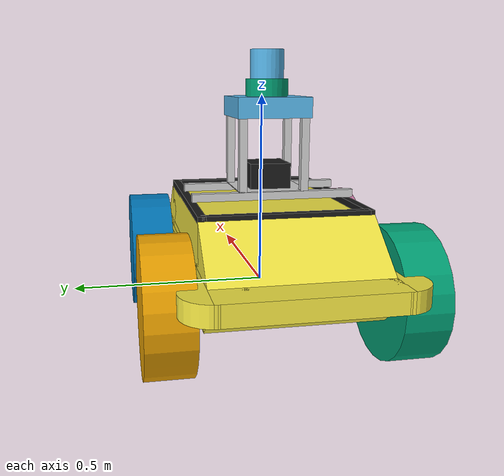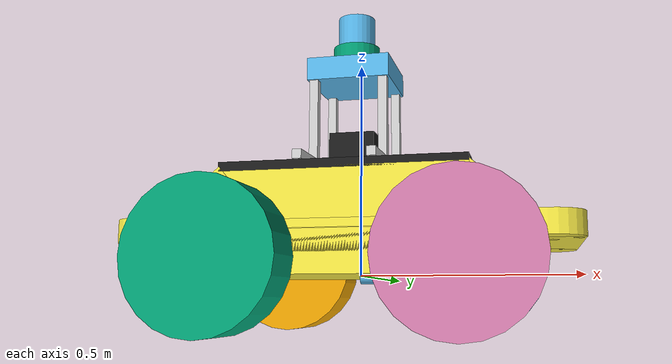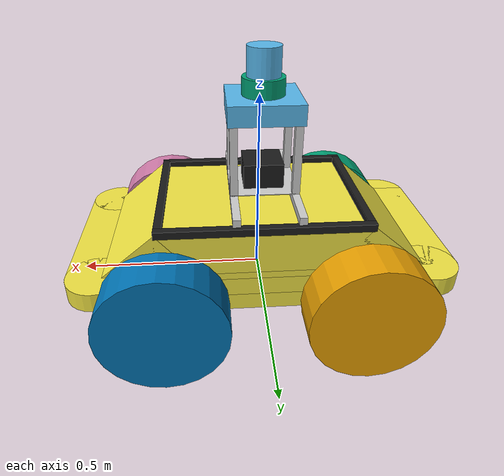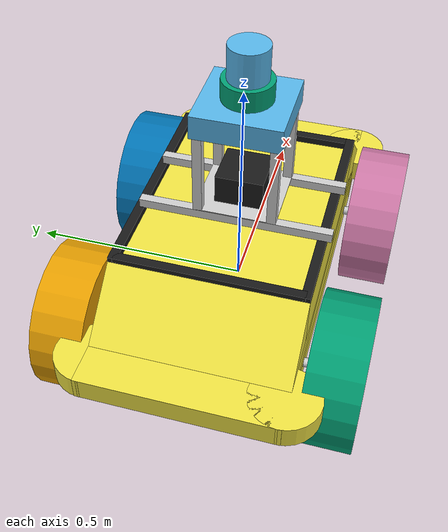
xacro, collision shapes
<?xml version="1.0" ?>
<robot name="ctu_cras_norlab_husky_sensor_config_3" xmlns:xacro="http://www.ros.org/wiki/xacro">
    <xacro:arg name="name" default="" />
    <xacro:if value="${len('$(arg name)') == 0}">
        <xacro:arg name="prefix" default="" />
    </xacro:if>
    <xacro:unless value="${len('$(arg name)') == 0}">
        <xacro:arg name="prefix" default="$(arg name)/" />
    </xacro:unless>

    <xacro:arg name="camera_0_pos_x" default="0.01"/>
    <xacro:arg name="camera_0_pos_y" default="0.048"/>
    <xacro:arg name="camera_0_pos_z" default="0.002"/>
    <xacro:arg name="camera_0_rpy_r" default="0"/>
    <xacro:arg name="camera_0_rpy_p" default="0"/>
    <xacro:arg name="camera_0_rpy_y" default="0"/>

    <xacro:arg name="camera_1_pos_x" default="0.048"/>
    <xacro:arg name="camera_1_pos_y" default="-0.01"/>
    <xacro:arg name="camera_1_pos_z" default="0.002"/>
    <xacro:arg name="camera_1_rpy_r" default="0"/>
    <xacro:arg name="camera_1_rpy_p" default="0"/>
    <xacro:arg name="camera_1_rpy_y" default="-1.5707963267948966"/>

    <xacro:arg name="camera_2_pos_x" default="-0.01"/>
    <xacro:arg name="camera_2_pos_y" default="-0.048"/>
    <xacro:arg name="camera_2_pos_z" default="0.002"/>
    <xacro:arg name="camera_2_rpy_r" default="0"/>
    <xacro:arg name="camera_2_rpy_p" default="0"/>
    <xacro:arg name="camera_2_rpy_y" default="3.14159265359"/>

    <xacro:arg name="camera_3_pos_x" default="-0.048"/>
    <xacro:arg name="camera_3_pos_y" default="0.01"/>
    <xacro:arg name="camera_3_pos_z" default="0.002"/>
    <xacro:arg name="camera_3_rpy_r" default="0"/>
    <xacro:arg name="camera_3_rpy_p" default="0"/>
    <xacro:arg name="camera_3_rpy_y" default="1.5707963267948966"/>

    <xacro:arg name="ouster_pos_x" default="0.000000"/>
    <xacro:arg name="ouster_pos_y" default="0.000000"/>
    <xacro:arg name="ouster_pos_z" default="0.000000"/>
    <xacro:arg name="ouster_rpy_r" default="0.000000"/>
    <xacro:arg name="ouster_rpy_p" default="0.000000"/>
    <xacro:arg name="ouster_rpy_y" default="0.785398163"/>

    <xacro:arg name="imu_pos_x" default="0.000000"/>
    <xacro:arg name="imu_pos_y" default="0.000000"/>
    <xacro:arg name="imu_pos_z" default="0.000000"/>
    <xacro:arg name="imu_rpy_r" default="3.14159265359"/>
    <xacro:arg name="imu_rpy_p" default="0.000000"/>
    <xacro:arg name="imu_rpy_y" default="0.000000"/>

    <!-- ARGUMENTS FOR DETERMINING REMOVABLE ROBOT PARTS PRESENCE AND POSITION ON THE BODY. -->

    <xacro:arg name="has_tower" default="1" />
    <!-- Distance from rear_right_corner to the rear part of the rear right ITEM of the top box. -->
    <xacro:arg name="tower_j_x" default="0.17" />
    <!-- Distance from rear_right_corner to the rightmost part of the rightmost ITEM of the top box. -->
    <xacro:arg name="tower_j_y" default="0.11" />
    <!-- Length of the top box along the X dimension -->
    <xacro:arg name="tower_x_dim" default="0.18" />
    <!-- Length of the top box along the X dimension -->
    <xacro:arg name="tower_y_dim" default="0.18" />
    <xacro:arg name="tower_height" default="0.23" />
    <xacro:arg name="tower_item_height" default="0.2" />
    <xacro:arg name="tower_lower_floor_z" default="0.002" />
    <xacro:arg name="tower_cap_revision" default="v1" />

    <xacro:arg name="has_xsens_mti_30_imu" default="1" />
    <xacro:arg name="has_ouster_lidar" default="1" />
    <xacro:arg name="has_basler_cameras" default="1" />
    <xacro:arg name="has_mote_deployer" default="0" />
    <xacro:arg name="has_mobilicom" default="0" />
    <xacro:arg name="has_bullet" default="1" />
    <xacro:arg name="has_jetson" default="1" />

    <xacro:arg name="ouster_mount_revision" default="v1" />

    <xacro:arg name="rendering_target" default="urdf" /> <!-- Pass either "urdf" or "ign" to tell the parser what is the desired target format. -->

    <xacro:arg name="simulate_ouster_lidar" default="True" />
    <xacro:arg name="simulate_basler_cams" default="True" />
    <xacro:arg name="simulate_imu" default="True" />

    <xacro:arg name="visualize_sensors" default="False" />

    <!-- MEASURED CONSTANTS -->
    <xacro:property name="body_mass" value="41.064" />
    <xacro:property name="wheel_mass" value="2.637" />
    <xacro:property name="tower_mass" value="2.0" />

    <!-- MACRO SPECIFICATIONS -->

    <xacro:include filename="$(find ctu_cras_norlab_husky_sensor_config_3)/urdf/utils.xacro" />

    <!-- SPECIAL LINKS -->

    <!-- This is a virtual link that specifies the origin to which parts attachable to the top of the robot should be related. -->
    <xacro:empty_link name="$(arg prefix)rear_right_corner" />
    <xacro:fixed_joint name="rear_right_corner_j" parent="$(arg prefix)base_link" child="$(arg prefix)rear_right_corner"
                       xyz="-0.27 -0.21 0.24"/>

    <!-- PAYLOAD -->
    <xacro:if value="$(arg has_bullet)">
        <xacro:include filename="$(find ctu_cras_norlab_husky_sensor_config_3)/urdf/bullet.xacro" />
    </xacro:if>
    <xacro:if value="$(arg has_mobilicom)">
        <xacro:include filename="$(find ctu_cras_norlab_husky_sensor_config_3)/urdf/mobilicom.xacro" />
    </xacro:if>
    <xacro:if value="$(arg has_ouster_lidar)">
        <xacro:include filename="$(find ctu_cras_norlab_husky_sensor_config_3)/urdf/ouster_lidar.xacro" />
    </xacro:if>
    <xacro:if value="$(arg has_mote_deployer)">
        <xacro:include filename="$(find ctu_cras_norlab_husky_sensor_config_3)/urdf/mote_deployer.xacro" />
    </xacro:if>
    <xacro:if value="$(arg has_basler_cameras)">
        <xacro:include filename="$(find ctu_cras_norlab_husky_sensor_config_3)/urdf/basler_cameras.xacro" />
    </xacro:if>
    <xacro:if value="$(arg has_xsens_mti_30_imu)">
        <xacro:include filename="$(find ctu_cras_norlab_husky_sensor_config_3)/urdf/xsens_mti_30.xacro" />
    </xacro:if>

    <!-- ROBOT LINKS AND JOINTS SPECIFICATION -->

    <link name='$(arg prefix)base_link'>
        <collision name='base_link_collision_bumper'>
            <origin xyz='0 0 0.091' rpy='0 -0 0'/>
            <geometry>
                <box size='0.9874 0.42 0.05'/>
            </geometry>
        </collision>
        <collision name='base_link_collision_middle'>
            <origin xyz='0 0 0.07' rpy='0 -0 0'/>
            <geometry>
                <box size='0.82 0.42 0.05'/>
            </geometry>
        </collision>
        <collision name='base_link_collision_bottom'>
            <origin xyz='0 0 0.046' rpy='0 -0 0'/>
            <geometry>
                <box size='0.7 0.42 0.095'/>
            </geometry>
        </collision>
        <collision name='base_link_collision_top'>
            <origin xyz='0 0 0.169' rpy='0 -0 0'/>
            <geometry>
                <box size='0.54 0.42 0.11'/>
            </geometry>
        </collision>
        <collision name='base_link_collision_front_bottom'>
            <origin xyz='0.3683 0 0.0367' rpy='0 -0.66 0'/>
            <geometry>
                <box size='0.0759 0.42 0.038'/>
            </geometry>
        </collision>
        <collision name='base_link_collision_rear_bottom'>
            <origin xyz='-0.3683 0 0.0367' rpy='0 0.66 0'/>
            <geometry>
                <box size='0.0759 0.42 0.038'/>
            </geometry>
        </collision>
        <collision name='base_link_collision_front_top'>
            <origin xyz='0.305 0 0.134' rpy='0 0.7 0'/>
            <geometry>
                <box size='0.18 0.42 0.1'/>
            </geometry>
        </collision>
        <collision name='base_link_collision_rear_top'>
            <origin xyz='-0.305 0 0.134' rpy='0 -0.7 0'/>
            <geometry>
                <box size='0.18 0.42 0.1'/>
            </geometry>
        </collision>
        <collision name='base_link_collision_front_bumper_left_side'>
            <origin xyz='0.419 0.2 0.091' />
            <geometry>
                <cylinder length="0.05" radius="0.075"/>
            </geometry>
        </collision>
        <collision name='base_link_collision_front_bumper_right_side'>
            <origin xyz='0.419 -0.2 0.091' />
            <geometry>
                <cylinder length="0.05" radius="0.075"/>
            </geometry>
        </collision>
        <collision name='base_link_collision_rear_bumper_left_side'>
            <origin xyz='-0.419 0.2 0.091' />
            <geometry>
                <cylinder length="0.05" radius="0.075"/>
            </geometry>
        </collision>
        <collision name='base_link_collision_rear_bumper_right_side'>
            <origin xyz='-0.419 -0.2 0.091' />
            <geometry>
                <cylinder length="0.05" radius="0.075"/>
            </geometry>
        </collision>
        <visual name='base_link_visual'>
            <origin xyz='0 0 0' rpy='0 -0 0'/>
            <geometry>
                <mesh filename='package://ctu_cras_norlab_husky_sensor_config_1/meshes/base_link.dae' scale='1 1 1'/>
            </geometry>
        </visual>
        <visual name='base_link_front_bumper_visual'>
            <origin xyz='0.48 0 0.091' rpy='0 -0 0'/>
            <geometry>
                <mesh filename='package://ctu_cras_norlab_husky_sensor_config_1/meshes/bumper.dae' scale='1 1 1'/>
            </geometry>
        </visual>
        <visual name='base_link__rear_bumper_visual'>
            <origin xyz='-0.48 0 0.091' rpy='0 -0 3.14159'/>
            <geometry>
                <mesh filename='package://ctu_cras_norlab_husky_sensor_config_1/meshes/bumper.dae' scale='1 1 1'/>
            </geometry>
        </visual>
        <visual name='base_link_fixed_joint_lump__top_chassis_link_visual_5'>
            <origin xyz='0 0 0' rpy='0 -0 0'/>
            <geometry>
                <mesh filename='package://ctu_cras_norlab_husky_sensor_config_1/meshes/top_chassis.dae' scale='1 1 1'/>
            </geometry>
        </visual>
        <inertial>
            <origin xyz="0 0 0.062329" rpy="0 0 0"/>
            <mass value="41.064"/>
            <inertia ixx="0.615397" ixy="0" ixz="0"
                     iyy="1.75388" iyz="0"
                     izz="2.03641" />
        </inertial>
    </link>

    <xacro:macro name="husky_wheel" params="name front left">
        <link name='$(arg prefix)${name}_link'>
            <collision name='${name}_link_collision'>
                <origin xyz='0 0 0' rpy='1.5708 -0 0'/>
                <geometry>
                    <cylinder radius='0.1651' length='0.1143'/>
                </geometry>
            </collision>
            <visual name='${name}_link_visual'>
                <origin xyz='0 0 0' rpy='0 -0 0'/>
                <geometry>
                    <mesh filename='package://ctu_cras_norlab_husky_sensor_config_1/meshes/wheel.dae' scale='1 1 1'/>
                </geometry>
            </visual>
            <inertial>
                <mass value="${wheel_mass}" />
                <inertia ixx="0.02467" ixy="0" ixz="0" iyy="0.04411" iyz="0" izz="0.02467" />
            </inertial>
        </link>
        <joint name='${name}_joint' type='revolute'>
            <origin xyz='${(front * 2 - 1) * 0.256} ${(left * 2 - 1) * 0.2854} 0.03282' rpy='0 0 0'/>
            <parent link='$(arg prefix)base_link'/>
            <child link='$(arg prefix)${name}_link'/>
            <dynamics damping='0' friction='0' />
            <axis xyz='0 1 0'/>
            <limit lower='-1e+16' upper='1e+16' effort='-1' velocity='-1'/>
        </joint>
        <link name="$(arg prefix)${name}_axle">
            <xacro:cylinder_vis_col length="0.03" radius="0.01" xyz="0 ${-(left*2-1)*0.065} 0" rpy="${pi/2} 0 0" />
            <xacro:default_inertial/>
        </link>
        <xacro:fixed_joint name="${name}_axle_j" parent="$(arg prefix)${name}_link" child="$(arg prefix)${name}_axle" lump="0" />

        <gazebo reference="$(arg prefix)${name}_link">
            <collision>
                <surface>
                    <contact>
                        <ode>
                            <kp>1e+07</kp>
                            <kd>1</kd>
                        </ode>
                    </contact>
                    <friction>
                        <ode>
                            <mu>0.5</mu>
                            <mu2>1</mu2>
                            <slip1>0.00062</slip1>
                            <slip2>0</slip2>
                            <fdir1>0 0 1</fdir1>
                        </ode>
                    </friction>
                </surface>
            </collision>
        </gazebo>
    </xacro:macro>
    <xacro:husky_wheel name="front_left_wheel" front="1" left="1" />
    <xacro:husky_wheel name="front_right_wheel" front="1" left="0" />
    <xacro:husky_wheel name="rear_left_wheel" front="0" left="1" />
    <xacro:husky_wheel name="rear_right_wheel" front="0" left="0" />

    <!-- Payload ITEM frame; do not attach stuff to it, rather attach it to rear_right_corner -->
    <link name="$(arg prefix)payload_frame">
        <xacro:item_20mm length="0.54" xyz="0 -0.2 0" rpy="0 ${pi/2} 0" black="1" />
        <xacro:item_20mm length="0.54" xyz="0 0.2 0" rpy="0 ${pi/2} 0" black="1" />
        <xacro:item_20mm length="0.4" xyz="-0.26 0 0" rpy="${pi/2} 0 0" black="1" />
        <xacro:item_20mm length="0.4" xyz="0.26 0 0" rpy="${pi/2} 0 0" black="1" />
        <xacro:default_inertial/>
    </link>
    <xacro:fixed_joint name="payload_frame_j" parent="$(arg prefix)base_link" child="$(arg prefix)payload_frame"
                       lump="1" xyz="0 0 0.23" />
    <xacro:solid_color_link_material link="$(arg prefix)payload_frame" r="0.1" g="0.1" b="0.1" />

    <xacro:if value="$(arg has_tower)">
        <!-- Manual calibration link in the bottom rear right corner of the tower (on top of the two transverse ITEMs). -->
        <xacro:empty_link name="$(arg prefix)tower_rear_right_corner" />
        <xacro:fixed_joint name="tower_rear_right_corner_j" parent="$(arg prefix)rear_right_corner" child="$(arg prefix)tower_rear_right_corner"
                           xyz="$(arg tower_j_x) $(arg tower_j_y) 0.02" lump="1"/>

        <link name="$(arg prefix)tower">
            <xacro:item_20mm length="$(arg tower_item_height)" xyz="${-$(arg tower_x_dim)/2+0.01} ${-$(arg tower_y_dim)/2+0.01} ${$(arg tower_item_height)/2}" />
            <xacro:item_20mm length="$(arg tower_item_height)" xyz="${$(arg tower_x_dim)/2-0.01} ${-$(arg tower_y_dim)/2+0.01} ${$(arg tower_item_height)/2}" />
            <xacro:item_20mm length="$(arg tower_item_height)" xyz="${$(arg tower_x_dim)/2-0.01} ${$(arg tower_y_dim)/2-0.01} ${$(arg tower_item_height)/2}" />
            <xacro:item_20mm length="$(arg tower_item_height)" xyz="${-$(arg tower_x_dim)/2+0.01} ${$(arg tower_y_dim)/2-0.01} ${$(arg tower_item_height)/2}" />
            <xacro:item_20mm length="0.42" xyz="${-$(arg tower_x_dim)/2+0.01} 0 -0.01" rpy="${pi/2} 0 0" />
            <xacro:item_20mm length="0.42" xyz="${$(arg tower_x_dim)/2-0.01} 0 -0.01" rpy="${pi/2} 0 0" />

            <inertial>
                <origin xyz="0 0 0.041" rpy="0 0 0"/>
                <mass value="${tower_mass}"/>
                <xacro:inertia_meshlab
                        ixx="0.0026136" ixy="0" ixz="0"
                        iyy="0.0049426" iyz="0"
                        izz="0.0070334"
                        scale="1" mass="${tower_mass}" />
            </inertial>
        </link>
        <xacro:solid_color_link_material link="$(arg prefix)tower" r="0.8" g="0.8" b="0.8" />
        <xacro:fixed_joint name="tower_j" parent="$(arg prefix)tower_rear_right_corner" child="$(arg prefix)tower" xyz="${$(arg tower_x_dim)/2} ${$(arg tower_y_dim)/2} 0.0" rpy="0 0 0" />

        <link name="$(arg prefix)tower_camera_floor">
            <xacro:box_vis_col size="$(arg tower_x_dim) $(arg tower_y_dim) 0.002" xyz="0 0 -0.001" />
            <xacro:default_inertial />
        </link>
        <xacro:solid_color_link_material link="$(arg prefix)tower_camera_floor" r="0.8" g="0.8" b="0.8" />
        <xacro:fixed_joint name="tower_camera_floor_j" parent="$(arg prefix)tower" child="$(arg prefix)tower_camera_floor"
                           lump="0" xyz="0 0 $(arg tower_item_height)" />

        <link name="$(arg prefix)tower_lower_floor">
            <xacro:box_vis_col size="$(arg tower_x_dim) $(arg tower_y_dim) 0.002" xyz="0 0 -0.001" />
            <xacro:default_inertial />
        </link>
        <xacro:solid_color_link_material link="$(arg prefix)tower_lower_floor" r="0.8" g="0.8" b="0.8" />
        <xacro:fixed_joint name="tower_lower_floor_j" parent="$(arg prefix)tower" child="$(arg prefix)tower_lower_floor"
                           lump="0" xyz="0 0 $(arg tower_lower_floor_z)" />

        <xacro:if value="${'$(arg tower_cap_revision)' == 'v1'}">
            <link name="$(arg prefix)tower_cap">
                <visual>
                    <geometry>
                        <mesh filename="package://ctu_cras_norlab_husky_sensor_config_3/meshes/tower_cap_v1.dae" />
                    </geometry>
                </visual>
                <collision>
                    <origin xyz="0 0 ${0.052/2 - 0.017}" />
                    <geometry>
                        <box size="0.19 0.19 0.052" />
                    </geometry>
                </collision>
                <xacro:default_inertial />
            </link>
            <xacro:fixed_joint name="tower_cap_j" parent="$(arg prefix)tower" child="$(arg prefix)tower_cap"
                               lump="1" xyz="0 0 ${$(arg tower_item_height)+0.002}" />
            <xacro:empty_link name="$(arg prefix)tower_cap_top" />
            <xacro:fixed_joint name="tower_cap_top_j" parent="$(arg prefix)tower_cap" child="$(arg prefix)tower_cap_top"
                               lump="0" xyz="0 0 ${0.052-0.017}" />
        </xacro:if>

        <xacro:if value="$(arg has_jetson)">
            <xacro:property name="jetson_mass" value="1.7" scope="global" />
            <link name="$(arg prefix)jetson">
                <xacro:box_vis_col size="0.105 0.105 0.065" xyz="0 0 ${0.065/2}" rgba="0.1 0.1 0.1 1" material_name="jetson_black" />
                <xacro:box_inertial depth="0.105" width="0.105" height="0.065" xyz="0 0 ${0.065/2}" mass="${jetson_mass}" />
            </link>
            <xacro:solid_color_link_material link="$(arg prefix)jetson" r="0.1" g="0.1" b="0.1" />
            <xacro:fixed_joint name="jetson_j" parent="$(arg prefix)tower_lower_floor" child="$(arg prefix)jetson" lump="1" />
        </xacro:if>

        <!-- IMU -->
        <xacro:xsens_mti_30 name="imu" simulate="$(arg simulate_imu)" />
        <xacro:calibrated_fixed_joint name="imu_j" parent="tower_lower_floor" child="imu" lump="0" />

        <!-- Omnicamera -->
        <xacro:if value="$(arg has_basler_cameras)">
            <xacro:basler_ace_omnicam name="camera_0" simulate="$(arg simulate_basler_cams)" visualize="$(arg visualize_sensors)" />
            <xacro:calibrated_fixed_joint name="camera_0_j" parent="tower_camera_floor" child="camera_0" lump="0" />

            <xacro:basler_ace_omnicam name="camera_1" simulate="$(arg simulate_basler_cams)" visualize="$(arg visualize_sensors)" />
            <xacro:calibrated_fixed_joint name="camera_1_j" parent="tower_camera_floor" child="camera_1" lump="0" />

            <xacro:basler_ace_omnicam name="camera_2" simulate="$(arg simulate_basler_cams)" visualize="$(arg visualize_sensors)" />
            <xacro:calibrated_fixed_joint name="camera_2_j" parent="tower_camera_floor" child="camera_2" lump="0" />

            <xacro:basler_ace_omnicam name="camera_3" simulate="$(arg simulate_basler_cams)" visualize="$(arg visualize_sensors)" />
            <xacro:calibrated_fixed_joint name="camera_3_j" parent="tower_camera_floor" child="camera_3" lump="0" />
        </xacro:if>

        <!-- 3D lidar -->
        <xacro:if value="$(arg has_ouster_lidar)">
            <xacro:ouster_os0_128 name="laser" simulate="$(arg simulate_ouster_lidar)" visualize="$(arg visualize_sensors)" horiz_samples="1024"/>
            <xacro:calibrated_fixed_joint name="laser_j" parent="ouster_mount_top" child="laser" prefix="ouster" lump="0"/>

            <xacro:if value="${'$(arg ouster_mount_revision)' == 'v1'}">
                <link name="$(arg prefix)ouster_mount">
                    <visual>
                        <geometry>
                            <mesh filename="package://ctu_cras_norlab_husky_sensor_config_3/meshes/ouster_mount_v1.dae" />
                        </geometry>
                    </visual>
                    <collision>
                        <origin xyz="0 0 ${0.045/2}" />
                        <geometry>
                            <cylinder length="0.045" radius="0.055" />
                        </geometry>
                    </collision>
                    <xacro:default_inertial />
                </link>
                <xacro:fixed_joint name="ouster_mount_j" parent="$(arg prefix)tower_cap_top" child="$(arg prefix)ouster_mount"
                                   lump="1" xyz="0 0 0" />
                <xacro:empty_link name="$(arg prefix)ouster_mount_top" />
                <xacro:fixed_joint name="ouster_mount_top_j" parent="$(arg prefix)ouster_mount" child="$(arg prefix)ouster_mount_top"
                                   lump="0" xyz="0 0 0.045" />
            </xacro:if>
        </xacro:if>
    </xacro:if>

    <!-- Mote deployer -->
    <xacro:if value="$(arg has_mote_deployer)">
        <xacro:mote_deployer name="mote_deployer_l" />
        <xacro:fixed_joint name="mote_deployer_l_j" parent="$(arg prefix)rear_right_corner" child="$(arg prefix)mote_deployer_l"
                           xyz="0.5 0.40 -0.045" rpy="0 0.33 0" />

        <xacro:mote_deployer name="mote_deployer_r" />
        <xacro:fixed_joint name="mote_deployer_r_j" parent="$(arg prefix)rear_right_corner" child="$(arg prefix)mote_deployer_r"
                           xyz="0.5 0.07 -0.045" rpy="0 0.33 0" />
    </xacro:if>

    <gazebo reference="$(arg prefix)base_link">
        <light name="light_left" type="spot">
            <pose>0 0.215 0.23 0 ${pi/2} ${-pi/2}</pose>
            <attenuation>
                <range>50</range>
                <linear>0</linear>
                <constant>0.1</constant>
                <quadratic>0.0025</quadratic>
            </attenuation>
            <diffuse>0.8 0.8 0.5 1</diffuse>
            <specular>0.8 0.8 0.5 1</specular>
            <spot>
                <inner_angle>2.8</inner_angle>
                <outer_angle>2.9</outer_angle>
                <falloff>1</falloff>
            </spot>
            <direction>1 0 0</direction>
        </light>
        <light name="light_right" type="spot">
            <pose>0 -0.215 0.23 0 ${pi/2} ${pi/2}</pose>
            <attenuation>
                <range>50</range>
                <linear>0</linear>
                <constant>0.1</constant>
                <quadratic>0.0025</quadratic>
            </attenuation>
            <diffuse>0.8 0.8 0.5 1</diffuse>
            <specular>0.8 0.8 0.5 1</specular>
            <spot>
                <inner_angle>2.8</inner_angle>
                <outer_angle>2.9</outer_angle>
                <falloff>1</falloff>
            </spot>
            <direction>1 0 0</direction>
        </light>
        <light name="light_rear" type="spot">
            <pose>-0.275 0 0.23 0 ${pi/2} 0</pose>
            <attenuation>
                <range>50</range>
                <linear>0</linear>
                <constant>0.1</constant>
                <quadratic>0.0025</quadratic>
            </attenuation>
            <diffuse>0.8 0.8 0.5 1</diffuse>
            <specular>0.8 0.8 0.5 1</specular>
            <spot>
                <inner_angle>1.8</inner_angle>
                <outer_angle>1.9</outer_angle>
                <falloff>1</falloff>
            </spot>
            <direction>1 0 0</direction>
        </light>
        <light name="light_front" type="spot">
            <pose>0.275 0 0.23 0 ${pi/2} ${pi}</pose>
            <attenuation>
                <range>50</range>
                <linear>0</linear>
                <constant>0.1</constant>
                <quadratic>0.0025</quadratic>
            </attenuation>
            <diffuse>0.8 0.8 0.5 1</diffuse>
            <specular>0.8 0.8 0.5 1</specular>
            <spot>
                <inner_angle>1.8</inner_angle>
                <outer_angle>1.9</outer_angle>
                <falloff>1</falloff>
            </spot>
            <direction>1 0 0</direction>
        </light>
    </gazebo>
</robot>

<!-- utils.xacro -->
<root xmlns:xacro="http://www.ros.org/wiki/xacro">
    <xacro:macro name="inertia_meshlab" params="ixx ixy ixz iyy iyz izz scale mass">
        <inertia
                ixx="${ixx*scale*scale}" ixy="${ixy*scale*scale}" ixz="${ixz*scale*scale}"
                iyy="${iyy*scale*scale}" iyz="${iyz*scale*scale}"
                izz="${izz*scale*scale}"/>
    </xacro:macro>

    <xacro:macro name="sphere_inertial" params="radius mass xyz:='0 0 0'">
        <inertial>
            <mass value="${mass}" />
            <origin xyz="${xyz}" rpy="0 0 0"/>
            <inertia ixx="${2.0/5 * mass * radius * radius}" ixy="0.0" ixz="0.0"
                     iyy="${2.0/5 * mass * radius * radius}" iyz="0.0"
                     izz="${2.0/5 * mass * radius * radius}" />
        </inertial>
    </xacro:macro>

    <xacro:macro name="box_inertial" params="width height depth mass xyz:='0 0 0' rpy:='0 0 0'">
        <inertial>
            <mass value="${mass}" />
            <origin xyz="${xyz}" rpy="${rpy}"/>
            <inertia ixx="${1.0/12 * mass * (width * width + height * height)}" ixy="0.0" ixz="0.0"
                     iyy="${1.0/12 * mass * (height * height + depth * depth)}" iyz="0.0"
                     izz="${1.0/12 * mass * (width * width + depth * depth)}" />
        </inertial>
    </xacro:macro>

    <xacro:macro name="cylinder_inertial" params="radius length mass xyz:='0 0 0' rpy:='0 0 0'">
        <inertial>
            <mass value="${mass}" />
            <origin xyz="${xyz}" rpy="${rpy}"/>
            <inertia ixx="${1.0/12 * mass * (3 * radius * radius + length * length)}" ixy="0.0" ixz="0.0"
                     iyy="${1.0/12 * mass * (3 * radius * radius + length * length)}" iyz="0.0"
                     izz="${0.5 * mass * radius * radius}" />
        </inertial>
    </xacro:macro>

    <xacro:macro name="default_inertial">
        <inertial>
            <origin xyz="0 0 0" rpy="0 0 0"/>
            <mass value="1e-5" />
            <inertia ixx="1e-3" ixy="1e-6" ixz="1e-6"
                     iyy="1e-3" iyz="1e-6"
                     izz="1e-3" />
        </inertial>
    </xacro:macro>

    <xacro:macro name="empty_link" params="name">
        <link name="${name}">
            <xacro:default_inertial />
        </link>
    </xacro:macro>

    <xacro:macro name="fixed_joint" params="name parent child xyz:='0 0 0' rpy:='0 0 0' lump:=1">
        <joint name="${name}" type="fixed">
            <parent link="${parent}"/>
            <child link="${child}"/>
            <origin xyz="${xyz}" rpy="${rpy}"/>
        </joint>
        <xacro:if value="${lump == 0}">
            <!-- workaround for https://github.com/osrf/sdformat/issues/378 -->
            <gazebo reference="${name}">
                <preserveFixedJoint>true</preserveFixedJoint>
            </gazebo>
        </xacro:if>
    </xacro:macro>

    <xacro:macro name="calibrated_fixed_joint" params="name parent child prefix:='' lump:='1'">
        <xacro:if value="${prefix == ''}">
            <xacro:property name="pref" value="${child}" />
        </xacro:if>
        <xacro:if value="${prefix != ''}">
            <xacro:property name="pref" value="${prefix}" />
        </xacro:if>
        <xacro:fixed_joint name="${name}" parent="$(arg prefix)${parent}" child="$(arg prefix)${child}"
                           xyz="$(arg ${pref}_pos_x) $(arg ${pref}_pos_y) $(arg ${pref}_pos_z)"
                           rpy="$(arg ${pref}_rpy_r) $(arg ${pref}_rpy_p) $(arg ${pref}_rpy_y)"
                           lump="${lump}"/>
    </xacro:macro>

    <xacro:macro name="solid_color_link_material" params="link r g b">
        <xacro:unless value="${'$(arg rendering_target)' == 'urdf'}">
            <gazebo reference="${link}">
                <visual>
                    <material>
                        <ambient>0 0 0 0</ambient>
                        <!-- Ignition Gazebo seems to use much brighter colors... -->
                        <diffuse>${max(0, r - 60/255.0)} ${max(0, g - 60/255.0)} ${max(0, b - 60/255.0)} 1</diffuse>
                        <specular>0 0 0 0</specular>
                        <emissive>0 0 0 0</emissive>
                    </material>
                </visual>
            </gazebo>
        </xacro:unless>
    </xacro:macro>

    <xacro:macro name="box_vis_col" params="size xyz:='0 0 0' rpy:='0 0 0' rgba:='0.8 0.8 0.8 1' material_name:='aluminium'">
        <visual>
            <origin xyz="${xyz}" rpy="${rpy}" />
            <geometry>
                <box size="${size}" />
            </geometry>
            <material name="${material_name}">
                <color rgba="${rgba}"/>
            </material>
        </visual>
        <collision>
            <origin xyz="${xyz}" rpy="${rpy}" />
            <geometry>
                <box size="${size}" />
            </geometry>
        </collision>
    </xacro:macro>

    <xacro:macro name="cylinder_vis_col" params="length radius xyz:='0 0 0' rpy:='0 0 0' rgba:='0.8 0.8 0.8 1' material_name:='aluminium'">
        <visual>
            <origin xyz="${xyz}" rpy="${rpy}" />
            <geometry>
                <cylinder length="${length}" radius="${radius}" />
            </geometry>
            <material name="${material_name}">
                <color rgba="${rgba}"/>
            </material>
        </visual>
        <collision>
            <origin xyz="${xyz}" rpy="${rpy}" />
            <geometry>
                <cylinder length="${length}" radius="${radius}" />
            </geometry>
        </collision>
    </xacro:macro>

    <xacro:macro name="item_20mm" params="length xyz:='0 0 0' rpy:='0 0 0' black:=0">
        <xacro:if value="${black == 0}">
            <xacro:box_vis_col size="0.02 0.02 ${length}" xyz="${xyz}" rpy="${rpy}" rgba="0.8 0.8 0.8 1" material_name="aluminum" />
        </xacro:if>
        <xacro:if value="${black == 1}">
            <xacro:box_vis_col size="0.02 0.02 ${length}" xyz="${xyz}" rpy="${rpy}" rgba="0.1 0.1 0.1 1" material_name="black_aluminum" />
        </xacro:if>
    </xacro:macro>
</root>

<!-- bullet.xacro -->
<root xmlns:xacro="http://www.ros.org/wiki/xacro">

    <xacro:arg name="bullet_pos_x" default="0" />
    <xacro:arg name="bullet_pos_y" default="0" />
    <xacro:arg name="bullet_pos_z" default="0" />
    <xacro:arg name="bullet_rpy_y" default="0" />
    <xacro:arg name="bullet_rpy_p" default="0" />
    <xacro:arg name="bullet_rpy_r" default="0" />
    <xacro:arg name="bullet_antenna_rotation" default="0" />
    <xacro:arg name="bullet_antenna_tilt" default="0" />
    <xacro:arg name="bullet_antenna_radius" default="0.01" />
    <xacro:arg name="bullet_antenna_length" default="0.17" />
    <xacro:arg name="bullet_parent_link" default="base_link" />
    <xacro:arg name="bullet_use_visual_mesh" default="1" />

    <xacro:property name="bullet_mass" value="0.25" scope="global" />

    <xacro:if value="$(arg has_bullet)">
        <link name="$(arg prefix)bullet">
            <visual>
                <xacro:if value="$(arg bullet_use_visual_mesh)">
                    <geometry>
                        <mesh filename="package://ctu_cras_norlab_husky_sensor_config_3/meshes/bullet.dae" />
                    </geometry>
                </xacro:if>
                <xacro:unless value="$(arg bullet_use_visual_mesh)">
                    <origin rpy="0 ${pi/2} 0" xyz="${0.138/2} 0 0" />
                    <geometry>
                        <cylinder length="0.138" radius="${0.037/2}" />
                    </geometry>
                    <material name="bullet_white">
                        <color rgba="0.9 0.9 0.9 1"/>
                    </material>
                </xacro:unless>
            </visual>
            <collision>
                <origin rpy="0 ${pi/2} 0" xyz="${0.138/2} 0 0" />
                <geometry>
                    <cylinder length="0.138" radius="${0.037/2}" />
                </geometry>
            </collision>
            <xacro:cylinder_inertial radius="${0.037/2}" length="0.138" mass="${bullet_mass}" xyz="${0.138/2} 0 0" rpy="0 ${pi/2} 0" />
        </link>
        <xacro:solid_color_link_material link="$(arg prefix)bullet" r="0.9" g="0.9" b="0.9" />
        <xacro:calibrated_fixed_joint name="bullet_j" parent="$(arg bullet_parent_link)" child="bullet" lump="1" />

        <link name="$(arg prefix)bullet_antenna">
            <visual>
                <origin rpy="0 0 0" xyz="0 0 ${$(arg bullet_antenna_length)/2}" />
                <geometry>
                    <cylinder radius="$(arg bullet_antenna_radius)" length="$(arg bullet_antenna_length)" />
                </geometry>
                <material name="bullet_antenna_white">
                    <color rgba="0.9 0.9 0.9 1"/>
                </material>
            </visual>
            <collision>
                <origin rpy="0 0 0" xyz="0 0 ${$(arg bullet_antenna_length)/2}" />
                <geometry>
                    <cylinder radius="$(arg bullet_antenna_radius)" length="$(arg bullet_antenna_length)" />
                </geometry>
            </collision>
            <xacro:default_inertial />
        </link>
        <xacro:solid_color_link_material link="$(arg prefix)bullet_antenna" r="0.9" g="0.9" b="0.9" />
        <joint name="bullet_antenna_j" type="fixed">
            <parent link="$(arg prefix)bullet"/>
            <child link="$(arg prefix)bullet_antenna"/>
            <origin xyz="${0.138 + $(arg bullet_antenna_radius)} 0 0"
                    rpy="$(arg bullet_antenna_rotation) $(arg bullet_antenna_tilt) 0"/>
        </joint>
    </xacro:if>

</root>

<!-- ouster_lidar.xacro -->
<root xmlns:xacro="http://www.ros.org/wiki/xacro">
    <xacro:property name="ouster_os0_128_mass" value="0.5" scope="global" />

    <xacro:macro name="ouster_os0_128" params="name simulate:=1 visualize:=0 horiz_samples:=2048 rate:=10">
        <link name="$(arg prefix)${name}">
            <visual>
                <geometry>
                    <mesh filename="package://ctu_cras_norlab_husky_sensor_config_3/meshes/ouster-os0.dae"/>
                </geometry>
            </visual>
            <collision>
                <origin rpy="0 0 0" xyz="0 0 ${0.0735/2}"/>
                <geometry>
                    <cylinder length="0.0735" radius="0.0435"/>
                </geometry>
            </collision>
            <xacro:cylinder_inertial mass="${ouster_os0_128_mass}" radius="0.0435" length="0.0735" xyz="0 0 ${0.0735/2}" />
        </link>
        <gazebo reference="$(arg prefix)${name}">
            <xacro:if value="${simulate and '$(arg rendering_target)' == 'ign'}">
                <sensor name="laser" type="gpu_lidar">
                    <pose>0 0 0.035925 0 0 0</pose> <!-- Geometrical center of the lidar is a bit off, this is from datasheet. -->
                    <update_rate>${rate}</update_rate>
                    <visualize>${visualize}</visualize>
                    <always_on>1</always_on>
                    <lidar>
                        <scan>
                            <horizontal>
                                <samples>${horiz_samples}</samples>
                                <resolution>1</resolution>
                                <min_angle>-3.1459</min_angle>
                                <max_angle>3.1459</max_angle>
                            </horizontal>
                            <vertical>
                                <samples>128</samples>
                                <resolution>1</resolution>
                                <min_angle>-${pi/4}</min_angle>
                                <max_angle>${pi/4}</max_angle>
                            </vertical>
                        </scan>
                        <range>
                            <min>0.25</min>  <!-- Datasheet says 0 cm, but that's a lie. -->
                            <max>50</max>
                            <resolution>0.01</resolution>
                        </range>
                        <noise>
                            <type>gaussian</type>
                            <mean>0</mean>
                            <stddev>0.01</stddev>
                        </noise>
                    </lidar>
                </sensor>
            </xacro:if>
        </gazebo>
    </xacro:macro>
</root>

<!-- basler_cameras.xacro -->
<root xmlns:xacro="http://www.ros.org/wiki/xacro">
    <!-- Mass properties from datasheet -->
    <xacro:property name="basler_ace_mass" value="0.09" scope="global" />
    <xacro:property name="basler_ace2_pro_mass" value="0.105" scope="global" />
    <xacro:property name="fisheye_lens_mass" value="0.05" scope="global" />
    <xacro:property name="omnicam_lens_mass" value="0.127" scope="global" />
    <xacro:property name="c_mount_flange_distance" value="0.017526" scope="global" />
    <xacro:property name="c_mount_radius" value="${0.025/2}" scope="global" />

    <xacro:macro name="basler_ace_base" params="name hfov_deg frame_rate resolution_x resolution_y fisheye:=0 camera_length origin_to_camera_front_dist camera_mass camera_mesh lens_length lens_back_focal_distance lens_entrance_pupil_position lens_mass lens_mesh near_clip:=-1 simulate:=1 visualize:=0">
        <xacro:property name="camera_width" value="0.029"/>
        <xacro:property name="camera_height" value="0.029"/>

        <xacro:property name="sensor_chip_pos" value="${origin_to_camera_front_dist - c_mount_flange_distance}" />
        <xacro:property name="lens_back_pos" value="${sensor_chip_pos + lens_back_focal_distance}" />

        <link name="$(arg prefix)${name}">
            <visual>
                <origin xyz="0 0 ${camera_height/2}" rpy="0 0 0" />
                <geometry>
                    <!-- The origin of the mesh is center above tripod screw -->
                    <mesh filename="${camera_mesh}"/>
                </geometry>
            </visual>
            <visual>
                <!-- The origin of the mesh is at the back of the lens -->
                <origin xyz="${lens_back_pos} 0 ${camera_height/2}" rpy="0 0 0" />
                <geometry>
                    <mesh filename="${lens_mesh}"/>
                </geometry>
            </visual>
            <collision name="${name}_collision">
                <origin rpy="0 0 0" xyz="${origin_to_camera_front_dist - camera_length/2} 0 ${camera_height/2}"/>
                <geometry>
                    <box size="${camera_length} ${camera_width} ${camera_height}" />
                </geometry>
            </collision>
            <collision name="${name}_lens_collision">
                <origin rpy="0 ${pi/2} 0" xyz="${lens_back_pos + lens_length/2} 0 ${camera_height/2}"/>
                <geometry>
                    <cylinder length="${lens_length}" radius="${c_mount_radius}" />
                </geometry>
            </collision>
            <xacro:box_inertial mass="${camera_mass + lens_mass}"
                                width="${camera_width}" height="${camera_height}" depth="${camera_length + lens_length - (c_mount_flange_distance - lens_back_focal_distance)}"
                                xyz="${origin_to_camera_front_dist + (lens_length - (c_mount_flange_distance - lens_back_focal_distance))/2 - camera_length/2} 0 ${camera_height/2}" />
        </link>
        <xacro:if value="${simulate}">
            <gazebo reference="$(arg prefix)${name}">
                <!-- Workaround for https://github.com/ignitionrobotics/ign-sensors/issues/24 -->
                <xacro:if value="${fisheye == 0 or '$(arg rendering_target)' == 'ign'}">
                    <xacro:property name="cam_type" value="camera"/>
                </xacro:if>
                <xacro:unless value="${fisheye == 0 or '$(arg rendering_target)' == 'ign'}">
                    <xacro:property name="cam_type" value="wideanglecamera"/>
                </xacro:unless>
                <sensor name="${name}" type="${cam_type}">
                    <!-- I think the simulated sensor should be placed in the middle of the entrance pupil. -->
                    <xacro:property name="virtual_lens_origin" value="${lens_back_pos + lens_length - lens_entrance_pupil_position}" />
                    <pose>${virtual_lens_origin} 0 ${camera_height/2} 0 0 0</pose>
                    <update_rate>${frame_rate}</update_rate>
                    <visualize>${visualize}</visualize>
                    <camera>
                        <horizontal_fov>${radians(hfov_deg)}</horizontal_fov>
                        <image>
                            <width>${resolution_x}</width>
                            <height>${resolution_y}</height>
                            <format>R8G8B8</format>
                        </image>
                        <clip>
                            <xacro:property name="clip" value="${lens_entrance_pupil_position * 1.1 if near_clip == -1 else near_clip}" />
                            <near>${clip}</near>
                            <far>300</far>
                        </clip>
                        <noise>
                            <type>gaussian</type>
                            <mean>0.0</mean>
                            <stddev>0.007</stddev>
                        </noise>
                        <xacro:if value="${fisheye and '$(arg rendering_target)' == 'gz'}">
                            <lens>
                                <type>stereographic</type>
                                <scale_to_hfov>true</scale_to_hfov>
                                <cutoff_angle>${pi}</cutoff_angle>
                                <env_texture_size>1024</env_texture_size>
                            </lens>
                        </xacro:if>
                        <xacro:unless value="${fisheye and '$(arg rendering_target)' == 'gz'}">
                            <lens>
                                <intrinsics>
                                    <xacro:property name="f" value="${resolution_x / (2 * tan(radians(hfov_deg)/2))}" />
                                    <fx>${f}</fx>
                                    <fy>${f}</fy>
                                    <cx>${(resolution_x - 1) / 2}</cx>
                                    <cy>${(resolution_y - 1) / 2}</cy>
                                    <s>0</s>
                                </intrinsics>
                            </lens>
                        </xacro:unless>
                    </camera>
                </sensor>
            </gazebo>
        </xacro:if>
    </xacro:macro>

    <xacro:macro name="basler_ace2_pro_link" params="name hfov_deg fisheye:=0 lens_length lens_back_focal_distance lens_entrance_pupil_position lens_mass lens_mesh near_clip:=-1 simulate:=1 visualize:=0">
        <xacro:basler_ace_base name="${name}" hfov_deg="${hfov_deg}" frame_rate="9" resolution_x="1920" resolution_y="1200"
                               fisheye="${fisheye}" simulate="${simulate}" visualize="${visualize}"
                               camera_length="0.0555" origin_to_camera_front_dist="0.0524" camera_mass="${basler_ace2_pro_mass}"
                               camera_mesh="package://ctu_cras_norlab_husky_sensor_config_3/meshes/basler_ace2_pro.dae"
                               lens_length="${lens_length}" lens_back_focal_distance="${lens_back_focal_distance}"
                               lens_entrance_pupil_position="${lens_entrance_pupil_position}" lens_mass="${lens_mass}" lens_mesh="${lens_mesh}"
                               near_clip="${near_clip}"
        />
    </xacro:macro>

    <xacro:macro name="basler_ace_omnicam" params="name simulate:=1 visualize:=0">
        <xacro:basler_ace2_pro_link name="${name}" hfov_deg="86.5" simulate="${simulate}" visualize="${visualize}"
                                    lens_back_focal_distance="0.00809" lens_entrance_pupil_position="0.01066" lens_length="0.03974" lens_mass="${omnicam_lens_mass}"
                                    lens_mesh="package://ctu_cras_norlab_husky_sensor_config_3/meshes/evetar_lens.dae" />
    </xacro:macro>
</root>

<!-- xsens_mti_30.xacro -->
<root xmlns:xacro="http://www.ros.org/wiki/xacro">
    <xacro:property name="xsens_mti_30_mass" value="0.055" scope="global" />

    <xacro:macro name="xsens_mti_30" params="name simulate:=1">
        <link name="$(arg prefix)${name}">
            <visual>
                <geometry>
                    <mesh filename="package://ctu_cras_norlab_husky_sensor_config_3/meshes/mti-30.dae"/>
                </geometry>
            </visual>
            <collision>
                <origin rpy="0 0 0" xyz="0 0 ${0.0236/2}"/>
                <geometry>
                    <box size="0.057 0.0419 0.0236"/>
                </geometry>
            </collision>
            <xacro:box_inertial mass="${xsens_mti_30_mass}" depth="0.057" width="0.0419" height="0.0236" xyz="0 0 ${0.0236/2}" />
        </link>
        <gazebo reference="$(arg prefix)${name}">
            <xacro:if value="${simulate}">
                <sensor name="${name}" type="imu">
                    <always_on>1</always_on>
                    <update_rate>50</update_rate>
                    <imu>
                        <angular_velocity>
                            <xacro:macro name="angular_imu_noise">
                                <noise type="gaussian">
                                    <mean>0</mean>
                                    <stddev>0.009</stddev>
                                    <bias_mean>0.00075</bias_mean>
                                    <bias_stddev>0.005</bias_stddev>
                                    <xacro:if value="${'$(arg rendering_target)' == 'ign'}">
                                        <dynamic_bias_stddev>0.00002</dynamic_bias_stddev>
                                        <dynamic_bias_correlation_time>400.0</dynamic_bias_correlation_time>
                                    </xacro:if>
                                    <precision>0.00025</precision>
                                </noise>
                            </xacro:macro>
                            <x><xacro:angular_imu_noise/></x>
                            <y><xacro:angular_imu_noise/></y>
                            <z><xacro:angular_imu_noise/></z>
                        </angular_velocity>
                        <linear_acceleration>
                            <xacro:macro name="linear_imu_noise">
                                <noise type="gaussian">
                                    <mean>0</mean>
                                    <stddev>0.021</stddev>
                                    <bias_mean>0.05</bias_mean>
                                    <bias_stddev>0.0075</bias_stddev>
                                    <xacro:if value="${'$(arg rendering_target)' == 'ign'}">
                                        <dynamic_bias_stddev>0.000375</dynamic_bias_stddev>
                                        <dynamic_bias_correlation_time>175.0</dynamic_bias_correlation_time>
                                    </xacro:if>
                                    <precision>0.005</precision>
                                </noise>
                            </xacro:macro>
                            <x><xacro:linear_imu_noise /></x>
                            <y><xacro:linear_imu_noise /></y>
                            <z><xacro:linear_imu_noise /></z>
                        </linear_acceleration>
                    </imu>
                </sensor>
            </xacro:if>
        </gazebo>
    </xacro:macro>
</root>
